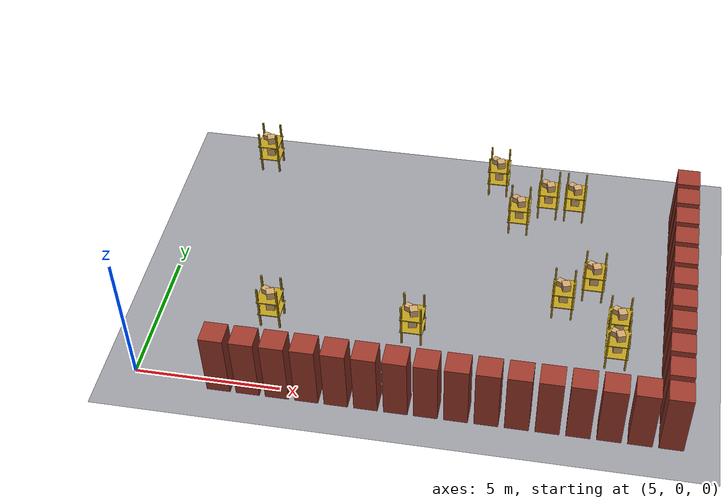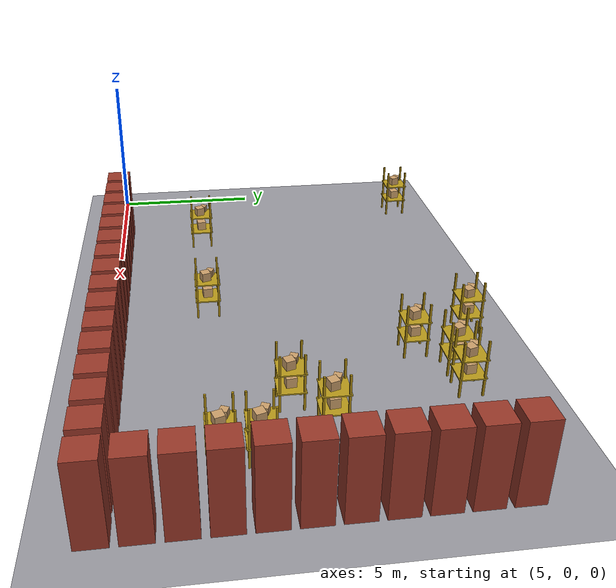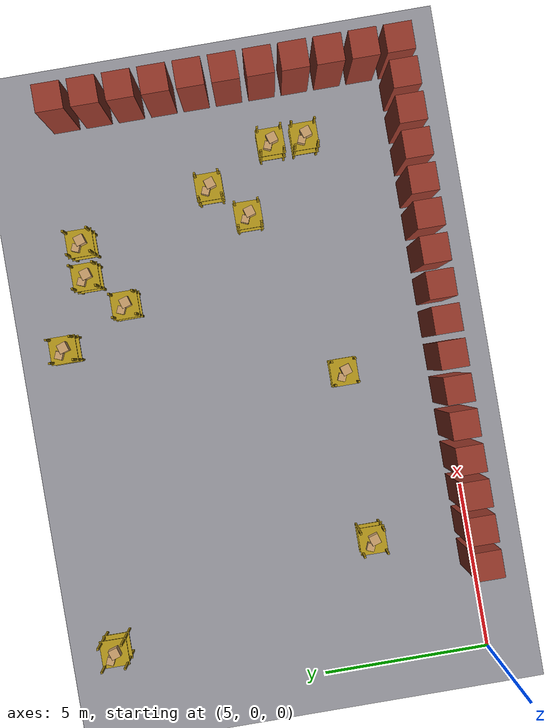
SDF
<sdf version="1.9">
 <world name="agv_nav">
  <model name="ground_plane">
   <static>true</static>
   <link name="link">
    <collision name="collision">
     <geometry><plane><normal>0 0 1</normal><size>100 100</size></plane></geometry>
    </collision>
    <visual name="visual">
     <geometry><plane><normal>0 0 1</normal><size>100 100</size></plane></geometry>
     <material>
      <ambient>0.55 0.55 0.58 1</ambient>
      <diffuse>0.6 0.6 0.63 1</diffuse>
      <specular>0.2 0.2 0.2 1</specular>
     </material>
    </visual>
   </link>
  </model>
  <model name="wall_8">
   <static>true</static>
   <pose>8 0 1.25 0 0 0</pose>
   <link name="link">
    <collision name="collision"><geometry><box><size>0.8 0.8 2.5</size></box></geometry></collision>
    <visual name="visual">
     <geometry><box><size>0.8 0.8 2.5</size></box></geometry>
     <material>
      <ambient>0.5 0.18 0.14 1</ambient>
      <diffuse>0.6 0.22 0.16 1</diffuse>
      <specular>0.1 0.1 0.1 1</specular>
     </material>
    </visual>
   </link>
  </model>
  <model name="wall_9">
   <static>true</static>
   <pose>9 0 1.25 0 0 0</pose>
   <link name="link">
    <collision name="collision"><geometry><box><size>0.8 0.8 2.5</size></box></geometry></collision>
    <visual name="visual">
     <geometry><box><size>0.8 0.8 2.5</size></box></geometry>
     <material>
      <ambient>0.5 0.18 0.14 1</ambient>
      <diffuse>0.6 0.22 0.16 1</diffuse>
      <specular>0.1 0.1 0.1 1</specular>
     </material>
    </visual>
   </link>
  </model>
  <model name="wall_10">
   <static>true</static>
   <pose>10 0 1.25 0 0 0</pose>
   <link name="link">
    <collision name="collision"><geometry><box><size>0.8 0.8 2.5</size></box></geometry></collision>
    <visual name="visual">
     <geometry><box><size>0.8 0.8 2.5</size></box></geometry>
     <material>
      <ambient>0.5 0.18 0.14 1</ambient>
      <diffuse>0.6 0.22 0.16 1</diffuse>
      <specular>0.1 0.1 0.1 1</specular>
     </material>
    </visual>
   </link>
  </model>
  <model name="wall_11">
   <static>true</static>
   <pose>11 0 1.25 0 0 0</pose>
   <link name="link">
    <collision name="collision"><geometry><box><size>0.8 0.8 2.5</size></box></geometry></collision>
    <visual name="visual">
     <geometry><box><size>0.8 0.8 2.5</size></box></geometry>
     <material>
      <ambient>0.5 0.18 0.14 1</ambient>
      <diffuse>0.6 0.22 0.16 1</diffuse>
      <specular>0.1 0.1 0.1 1</specular>
     </material>
    </visual>
   </link>
  </model>
  <model name="wall_12">
   <static>true</static>
   <pose>12 0 1.25 0 0 0</pose>
   <link name="link">
    <collision name="collision"><geometry><box><size>0.8 0.8 2.5</size></box></geometry></collision>
    <visual name="visual">
     <geometry><box><size>0.8 0.8 2.5</size></box></geometry>
     <material>
      <ambient>0.5 0.18 0.14 1</ambient>
      <diffuse>0.6 0.22 0.16 1</diffuse>
      <specular>0.1 0.1 0.1 1</specular>
     </material>
    </visual>
   </link>
  </model>
  <model name="wall_13">
   <static>true</static>
   <pose>13 0 1.25 0 0 0</pose>
   <link name="link">
    <collision name="collision"><geometry><box><size>0.8 0.8 2.5</size></box></geometry></collision>
    <visual name="visual">
     <geometry><box><size>0.8 0.8 2.5</size></box></geometry>
     <material>
      <ambient>0.5 0.18 0.14 1</ambient>
      <diffuse>0.6 0.22 0.16 1</diffuse>
      <specular>0.1 0.1 0.1 1</specular>
     </material>
    </visual>
   </link>
  </model>
  <model name="wall_14">
   <static>true</static>
   <pose>14 0 1.25 0 0 0</pose>
   <link name="link">
    <collision name="collision"><geometry><box><size>0.8 0.8 2.5</size></box></geometry></collision>
    <visual name="visual">
     <geometry><box><size>0.8 0.8 2.5</size></box></geometry>
     <material>
      <ambient>0.5 0.18 0.14 1</ambient>
      <diffuse>0.6 0.22 0.16 1</diffuse>
      <specular>0.1 0.1 0.1 1</specular>
     </material>
    </visual>
   </link>
  </model>
  <model name="wall_15">
   <static>true</static>
   <pose>15 0 1.25 0 0 0</pose>
   <link name="link">
    <collision name="collision"><geometry><box><size>0.8 0.8 2.5</size></box></geometry></collision>
    <visual name="visual">
     <geometry><box><size>0.8 0.8 2.5</size></box></geometry>
     <material>
      <ambient>0.5 0.18 0.14 1</ambient>
      <diffuse>0.6 0.22 0.16 1</diffuse>
      <specular>0.1 0.1 0.1 1</specular>
     </material>
    </visual>
   </link>
  </model>
  <model name="wall_16">
   <static>true</static>
   <pose>16 0 1.25 0 0 0</pose>
   <link name="link">
    <collision name="collision"><geometry><box><size>0.8 0.8 2.5</size></box></geometry></collision>
    <visual name="visual">
     <geometry><box><size>0.8 0.8 2.5</size></box></geometry>
     <material>
      <ambient>0.5 0.18 0.14 1</ambient>
      <diffuse>0.6 0.22 0.16 1</diffuse>
      <specular>0.1 0.1 0.1 1</specular>
     </material>
    </visual>
   </link>
  </model>
  <model name="wall_17">
   <static>true</static>
   <pose>17 0 1.25 0 0 0</pose>
   <link name="link">
    <collision name="collision"><geometry><box><size>0.8 0.8 2.5</size></box></geometry></collision>
    <visual name="visual">
     <geometry><box><size>0.8 0.8 2.5</size></box></geometry>
     <material>
      <ambient>0.5 0.18 0.14 1</ambient>
      <diffuse>0.6 0.22 0.16 1</diffuse>
      <specular>0.1 0.1 0.1 1</specular>
     </material>
    </visual>
   </link>
  </model>
  <model name="wall_18">
   <static>true</static>
   <pose>18 0 1.25 0 0 0</pose>
   <link name="link">
    <collision name="collision"><geometry><box><size>0.8 0.8 2.5</size></box></geometry></collision>
    <visual name="visual">
     <geometry><box><size>0.8 0.8 2.5</size></box></geometry>
     <material>
      <ambient>0.5 0.18 0.14 1</ambient>
      <diffuse>0.6 0.22 0.16 1</diffuse>
      <specular>0.1 0.1 0.1 1</specular>
     </material>
    </visual>
   </link>
  </model>
  <model name="wall_19">
   <static>true</static>
   <pose>19 0 1.25 0 0 0</pose>
   <link name="link">
    <collision name="collision"><geometry><box><size>0.8 0.8 2.5</size></box></geometry></collision>
    <visual name="visual">
     <geometry><box><size>0.8 0.8 2.5</size></box></geometry>
     <material>
      <ambient>0.5 0.18 0.14 1</ambient>
      <diffuse>0.6 0.22 0.16 1</diffuse>
      <specular>0.1 0.1 0.1 1</specular>
     </material>
    </visual>
   </link>
  </model>
  <model name="wall_20">
   <static>true</static>
   <pose>20 0 1.25 0 0 0</pose>
   <link name="link">
    <collision name="collision"><geometry><box><size>0.8 0.8 2.5</size></box></geometry></collision>
    <visual name="visual">
     <geometry><box><size>0.8 0.8 2.5</size></box></geometry>
     <material>
      <ambient>0.5 0.18 0.14 1</ambient>
      <diffuse>0.6 0.22 0.16 1</diffuse>
      <specular>0.1 0.1 0.1 1</specular>
     </material>
    </visual>
   </link>
  </model>
  <model name="wall_21">
   <static>true</static>
   <pose>21 0 1.25 0 0 0</pose>
   <link name="link">
    <collision name="collision"><geometry><box><size>0.8 0.8 2.5</size></box></geometry></collision>
    <visual name="visual">
     <geometry><box><size>0.8 0.8 2.5</size></box></geometry>
     <material>
      <ambient>0.5 0.18 0.14 1</ambient>
      <diffuse>0.6 0.22 0.16 1</diffuse>
      <specular>0.1 0.1 0.1 1</specular>
     </material>
    </visual>
   </link>
  </model>
  <model name="wall_22">
   <static>true</static>
   <pose>22 0 1.25 0 0 0</pose>
   <link name="link">
    <collision name="collision"><geometry><box><size>0.8 0.8 2.5</size></box></geometry></collision>
    <visual name="visual">
     <geometry><box><size>0.8 0.8 2.5</size></box></geometry>
     <material>
      <ambient>0.5 0.18 0.14 1</ambient>
      <diffuse>0.6 0.22 0.16 1</diffuse>
      <specular>0.1 0.1 0.1 1</specular>
     </material>
    </visual>
   </link>
  </model>
  <model name="wall_23">
   <static>true</static>
   <pose>23 0 1.25 0 0 0</pose>
   <link name="link">
    <collision name="collision"><geometry><box><size>0.8 0.8 2.5</size></box></geometry></collision>
    <visual name="visual">
     <geometry><box><size>0.8 0.8 2.5</size></box></geometry>
     <material>
      <ambient>0.5 0.18 0.14 1</ambient>
      <diffuse>0.6 0.22 0.16 1</diffuse>
      <specular>0.1 0.1 0.1 1</specular>
     </material>
    </visual>
   </link>
  </model>
  <model name="wall_25">
   <static>true</static>
   <pose>23 1 1.25 0 0 0</pose>
   <link name="link">
    <collision name="collision"><geometry><box><size>0.8 0.8 2.5</size></box></geometry></collision>
    <visual name="visual">
     <geometry><box><size>0.8 0.8 2.5</size></box></geometry>
     <material>
      <ambient>0.5 0.18 0.14 1</ambient>
      <diffuse>0.6 0.22 0.16 1</diffuse>
      <specular>0.1 0.1 0.1 1</specular>
     </material>
    </visual>
   </link>
  </model>
  <model name="wall_27">
   <static>true</static>
   <pose>23 2 1.25 0 0 0</pose>
   <link name="link">
    <collision name="collision"><geometry><box><size>0.8 0.8 2.5</size></box></geometry></collision>
    <visual name="visual">
     <geometry><box><size>0.8 0.8 2.5</size></box></geometry>
     <material>
      <ambient>0.5 0.18 0.14 1</ambient>
      <diffuse>0.6 0.22 0.16 1</diffuse>
      <specular>0.1 0.1 0.1 1</specular>
     </material>
    </visual>
   </link>
  </model>
  <model name="obs_1">
   <static>true</static>
   <pose>9 3 0.9 0 0 0</pose>
   <link name="link">
    <collision name="collision"><geometry><box><size>0.8 0.8 1.8</size></box></geometry></collision>
    <visual name="post_0">
     <pose>0.34 0.34 0 0 0 0</pose>
     <geometry><box><size>0.06 0.06 1.8</size></box></geometry>
     <material><ambient>0.55 0.45 0.05 1</ambient><diffuse>0.65 0.52 0.06 1</diffuse></material>
    </visual>
    <visual name="post_1">
     <pose>-0.34 0.34 0 0 0 0</pose>
     <geometry><box><size>0.06 0.06 1.8</size></box></geometry>
     <material><ambient>0.55 0.45 0.05 1</ambient><diffuse>0.65 0.52 0.06 1</diffuse></material>
    </visual>
    <visual name="post_2">
     <pose>0.34 -0.34 0 0 0 0</pose>
     <geometry><box><size>0.06 0.06 1.8</size></box></geometry>
     <material><ambient>0.55 0.45 0.05 1</ambient><diffuse>0.65 0.52 0.06 1</diffuse></material>
    </visual>
    <visual name="post_3">
     <pose>-0.34 -0.34 0 0 0 0</pose>
     <geometry><box><size>0.06 0.06 1.8</size></box></geometry>
     <material><ambient>0.55 0.45 0.05 1</ambient><diffuse>0.65 0.52 0.06 1</diffuse></material>
    </visual>
    <visual name="plank_0">
     <pose>0 0 -0.3 0 0 0</pose>
     <geometry><box><size>0.8 0.8 0.04</size></box></geometry>
     <material><ambient>0.6 0.5 0.08 1</ambient><diffuse>0.72 0.6 0.1 1</diffuse></material>
    </visual>
    <visual name="plank_1">
     <pose>0 0 0.3 0 0 0</pose>
     <geometry><box><size>0.8 0.8 0.04</size></box></geometry>
     <material><ambient>0.6 0.5 0.08 1</ambient><diffuse>0.72 0.6 0.1 1</diffuse></material>
    </visual>
    <visual name="cbox_0">
     <pose>0.05 -0.05 0.47 0 0 0.3</pose>
     <geometry><box><size>0.28 0.28 0.28</size></box></geometry>
     <material><ambient>0.72 0.56 0.38 1</ambient><diffuse>0.8 0.63 0.42 1</diffuse></material>
    </visual>
    <visual name="cbox_1">
     <pose>-0.15 0.1 0.47 0 0 -0.4</pose>
     <geometry><box><size>0.22 0.22 0.22</size></box></geometry>
     <material><ambient>0.72 0.56 0.38 1</ambient><diffuse>0.8 0.63 0.42 1</diffuse></material>
    </visual>
    <visual name="cbox_2">
     <pose>0.0 0.0 -0.13 0 0 0.1</pose>
     <geometry><box><size>0.3 0.3 0.3</size></box></geometry>
     <material><ambient>0.72 0.56 0.38 1</ambient><diffuse>0.8 0.63 0.42 1</diffuse></material>
    </visual>
   </link>
  </model>
  <model name="obs_2">
   <static>true</static>
   <pose>14 3 0.9 0 0 0</pose>
   <link name="link">
    <collision name="collision"><geometry><box><size>0.8 0.8 1.8</size></box></geometry></collision>
    <visual name="post_0">
     <pose>0.34 0.34 0 0 0 0</pose>
     <geometry><box><size>0.06 0.06 1.8</size></box></geometry>
     <material><ambient>0.55 0.45 0.05 1</ambient><diffuse>0.65 0.52 0.06 1</diffuse></material>
    </visual>
    <visual name="post_1">
     <pose>-0.34 0.34 0 0 0 0</pose>
     <geometry><box><size>0.06 0.06 1.8</size></box></geometry>
     <material><ambient>0.55 0.45 0.05 1</ambient><diffuse>0.65 0.52 0.06 1</diffuse></material>
    </visual>
    <visual name="post_2">
     <pose>0.34 -0.34 0 0 0 0</pose>
     <geometry><box><size>0.06 0.06 1.8</size></box></geometry>
     <material><ambient>0.55 0.45 0.05 1</ambient><diffuse>0.65 0.52 0.06 1</diffuse></material>
    </visual>
    <visual name="post_3">
     <pose>-0.34 -0.34 0 0 0 0</pose>
     <geometry><box><size>0.06 0.06 1.8</size></box></geometry>
     <material><ambient>0.55 0.45 0.05 1</ambient><diffuse>0.65 0.52 0.06 1</diffuse></material>
    </visual>
    <visual name="plank_0">
     <pose>0 0 -0.3 0 0 0</pose>
     <geometry><box><size>0.8 0.8 0.04</size></box></geometry>
     <material><ambient>0.6 0.5 0.08 1</ambient><diffuse>0.72 0.6 0.1 1</diffuse></material>
    </visual>
    <visual name="plank_1">
     <pose>0 0 0.3 0 0 0</pose>
     <geometry><box><size>0.8 0.8 0.04</size></box></geometry>
     <material><ambient>0.6 0.5 0.08 1</ambient><diffuse>0.72 0.6 0.1 1</diffuse></material>
    </visual>
    <visual name="cbox_0">
     <pose>0.05 -0.05 0.47 0 0 0.3</pose>
     <geometry><box><size>0.28 0.28 0.28</size></box></geometry>
     <material><ambient>0.72 0.56 0.38 1</ambient><diffuse>0.8 0.63 0.42 1</diffuse></material>
    </visual>
    <visual name="cbox_1">
     <pose>-0.15 0.1 0.47 0 0 -0.4</pose>
     <geometry><box><size>0.22 0.22 0.22</size></box></geometry>
     <material><ambient>0.72 0.56 0.38 1</ambient><diffuse>0.8 0.63 0.42 1</diffuse></material>
    </visual>
    <visual name="cbox_2">
     <pose>0.0 0.0 -0.13 0 0 0.1</pose>
     <geometry><box><size>0.3 0.3 0.3</size></box></geometry>
     <material><ambient>0.72 0.56 0.38 1</ambient><diffuse>0.8 0.63 0.42 1</diffuse></material>
    </visual>
   </link>
  </model>
  <model name="obs_3">
   <static>true</static>
   <pose>21 3 0.9 0 0 0</pose>
   <link name="link">
    <collision name="collision"><geometry><box><size>0.8 0.8 1.8</size></box></geometry></collision>
    <visual name="post_0">
     <pose>0.34 0.34 0 0 0 0</pose>
     <geometry><box><size>0.06 0.06 1.8</size></box></geometry>
     <material><ambient>0.55 0.45 0.05 1</ambient><diffuse>0.65 0.52 0.06 1</diffuse></material>
    </visual>
    <visual name="post_1">
     <pose>-0.34 0.34 0 0 0 0</pose>
     <geometry><box><size>0.06 0.06 1.8</size></box></geometry>
     <material><ambient>0.55 0.45 0.05 1</ambient><diffuse>0.65 0.52 0.06 1</diffuse></material>
    </visual>
    <visual name="post_2">
     <pose>0.34 -0.34 0 0 0 0</pose>
     <geometry><box><size>0.06 0.06 1.8</size></box></geometry>
     <material><ambient>0.55 0.45 0.05 1</ambient><diffuse>0.65 0.52 0.06 1</diffuse></material>
    </visual>
    <visual name="post_3">
     <pose>-0.34 -0.34 0 0 0 0</pose>
     <geometry><box><size>0.06 0.06 1.8</size></box></geometry>
     <material><ambient>0.55 0.45 0.05 1</ambient><diffuse>0.65 0.52 0.06 1</diffuse></material>
    </visual>
    <visual name="plank_0">
     <pose>0 0 -0.3 0 0 0</pose>
     <geometry><box><size>0.8 0.8 0.04</size></box></geometry>
     <material><ambient>0.6 0.5 0.08 1</ambient><diffuse>0.72 0.6 0.1 1</diffuse></material>
    </visual>
    <visual name="plank_1">
     <pose>0 0 0.3 0 0 0</pose>
     <geometry><box><size>0.8 0.8 0.04</size></box></geometry>
     <material><ambient>0.6 0.5 0.08 1</ambient><diffuse>0.72 0.6 0.1 1</diffuse></material>
    </visual>
    <visual name="cbox_0">
     <pose>0.05 -0.05 0.47 0 0 0.3</pose>
     <geometry><box><size>0.28 0.28 0.28</size></box></geometry>
     <material><ambient>0.72 0.56 0.38 1</ambient><diffuse>0.8 0.63 0.42 1</diffuse></material>
    </visual>
    <visual name="cbox_1">
     <pose>-0.15 0.1 0.47 0 0 -0.4</pose>
     <geometry><box><size>0.22 0.22 0.22</size></box></geometry>
     <material><ambient>0.72 0.56 0.38 1</ambient><diffuse>0.8 0.63 0.42 1</diffuse></material>
    </visual>
    <visual name="cbox_2">
     <pose>0.0 0.0 -0.13 0 0 0.1</pose>
     <geometry><box><size>0.3 0.3 0.3</size></box></geometry>
     <material><ambient>0.72 0.56 0.38 1</ambient><diffuse>0.8 0.63 0.42 1</diffuse></material>
    </visual>
   </link>
  </model>
  <model name="wall_29">
   <static>true</static>
   <pose>23 3 1.25 0 0 0</pose>
   <link name="link">
    <collision name="collision"><geometry><box><size>0.8 0.8 2.5</size></box></geometry></collision>
    <visual name="visual">
     <geometry><box><size>0.8 0.8 2.5</size></box></geometry>
     <material>
      <ambient>0.5 0.18 0.14 1</ambient>
      <diffuse>0.6 0.22 0.16 1</diffuse>
      <specular>0.1 0.1 0.1 1</specular>
     </material>
    </visual>
   </link>
  </model>
  <model name="obs_5">
   <static>true</static>
   <pose>21 4 0.9 0 0 0</pose>
   <link name="link">
    <collision name="collision"><geometry><box><size>0.8 0.8 1.8</size></box></geometry></collision>
    <visual name="post_0">
     <pose>0.34 0.34 0 0 0 0</pose>
     <geometry><box><size>0.06 0.06 1.8</size></box></geometry>
     <material><ambient>0.55 0.45 0.05 1</ambient><diffuse>0.65 0.52 0.06 1</diffuse></material>
    </visual>
    <visual name="post_1">
     <pose>-0.34 0.34 0 0 0 0</pose>
     <geometry><box><size>0.06 0.06 1.8</size></box></geometry>
     <material><ambient>0.55 0.45 0.05 1</ambient><diffuse>0.65 0.52 0.06 1</diffuse></material>
    </visual>
    <visual name="post_2">
     <pose>0.34 -0.34 0 0 0 0</pose>
     <geometry><box><size>0.06 0.06 1.8</size></box></geometry>
     <material><ambient>0.55 0.45 0.05 1</ambient><diffuse>0.65 0.52 0.06 1</diffuse></material>
    </visual>
    <visual name="post_3">
     <pose>-0.34 -0.34 0 0 0 0</pose>
     <geometry><box><size>0.06 0.06 1.8</size></box></geometry>
     <material><ambient>0.55 0.45 0.05 1</ambient><diffuse>0.65 0.52 0.06 1</diffuse></material>
    </visual>
    <visual name="plank_0">
     <pose>0 0 -0.3 0 0 0</pose>
     <geometry><box><size>0.8 0.8 0.04</size></box></geometry>
     <material><ambient>0.6 0.5 0.08 1</ambient><diffuse>0.72 0.6 0.1 1</diffuse></material>
    </visual>
    <visual name="plank_1">
     <pose>0 0 0.3 0 0 0</pose>
     <geometry><box><size>0.8 0.8 0.04</size></box></geometry>
     <material><ambient>0.6 0.5 0.08 1</ambient><diffuse>0.72 0.6 0.1 1</diffuse></material>
    </visual>
    <visual name="cbox_0">
     <pose>0.05 -0.05 0.47 0 0 0.3</pose>
     <geometry><box><size>0.28 0.28 0.28</size></box></geometry>
     <material><ambient>0.72 0.56 0.38 1</ambient><diffuse>0.8 0.63 0.42 1</diffuse></material>
    </visual>
    <visual name="cbox_1">
     <pose>-0.15 0.1 0.47 0 0 -0.4</pose>
     <geometry><box><size>0.22 0.22 0.22</size></box></geometry>
     <material><ambient>0.72 0.56 0.38 1</ambient><diffuse>0.8 0.63 0.42 1</diffuse></material>
    </visual>
    <visual name="cbox_2">
     <pose>0.0 0.0 -0.13 0 0 0.1</pose>
     <geometry><box><size>0.3 0.3 0.3</size></box></geometry>
     <material><ambient>0.72 0.56 0.38 1</ambient><diffuse>0.8 0.63 0.42 1</diffuse></material>
    </visual>
   </link>
  </model>
  <model name="wall_31">
   <static>true</static>
   <pose>23 4 1.25 0 0 0</pose>
   <link name="link">
    <collision name="collision"><geometry><box><size>0.8 0.8 2.5</size></box></geometry></collision>
    <visual name="visual">
     <geometry><box><size>0.8 0.8 2.5</size></box></geometry>
     <material>
      <ambient>0.5 0.18 0.14 1</ambient>
      <diffuse>0.6 0.22 0.16 1</diffuse>
      <specular>0.1 0.1 0.1 1</specular>
     </material>
    </visual>
   </link>
  </model>
  <model name="obs_7">
   <static>true</static>
   <pose>19 5 0.9 0 0 0</pose>
   <link name="link">
    <collision name="collision"><geometry><box><size>0.8 0.8 1.8</size></box></geometry></collision>
    <visual name="post_0">
     <pose>0.34 0.34 0 0 0 0</pose>
     <geometry><box><size>0.06 0.06 1.8</size></box></geometry>
     <material><ambient>0.55 0.45 0.05 1</ambient><diffuse>0.65 0.52 0.06 1</diffuse></material>
    </visual>
    <visual name="post_1">
     <pose>-0.34 0.34 0 0 0 0</pose>
     <geometry><box><size>0.06 0.06 1.8</size></box></geometry>
     <material><ambient>0.55 0.45 0.05 1</ambient><diffuse>0.65 0.52 0.06 1</diffuse></material>
    </visual>
    <visual name="post_2">
     <pose>0.34 -0.34 0 0 0 0</pose>
     <geometry><box><size>0.06 0.06 1.8</size></box></geometry>
     <material><ambient>0.55 0.45 0.05 1</ambient><diffuse>0.65 0.52 0.06 1</diffuse></material>
    </visual>
    <visual name="post_3">
     <pose>-0.34 -0.34 0 0 0 0</pose>
     <geometry><box><size>0.06 0.06 1.8</size></box></geometry>
     <material><ambient>0.55 0.45 0.05 1</ambient><diffuse>0.65 0.52 0.06 1</diffuse></material>
    </visual>
    <visual name="plank_0">
     <pose>0 0 -0.3 0 0 0</pose>
     <geometry><box><size>0.8 0.8 0.04</size></box></geometry>
     <material><ambient>0.6 0.5 0.08 1</ambient><diffuse>0.72 0.6 0.1 1</diffuse></material>
    </visual>
    <visual name="plank_1">
     <pose>0 0 0.3 0 0 0</pose>
     <geometry><box><size>0.8 0.8 0.04</size></box></geometry>
     <material><ambient>0.6 0.5 0.08 1</ambient><diffuse>0.72 0.6 0.1 1</diffuse></material>
    </visual>
    <visual name="cbox_0">
     <pose>0.05 -0.05 0.47 0 0 0.3</pose>
     <geometry><box><size>0.28 0.28 0.28</size></box></geometry>
     <material><ambient>0.72 0.56 0.38 1</ambient><diffuse>0.8 0.63 0.42 1</diffuse></material>
    </visual>
    <visual name="cbox_1">
     <pose>-0.15 0.1 0.47 0 0 -0.4</pose>
     <geometry><box><size>0.22 0.22 0.22</size></box></geometry>
     <material><ambient>0.72 0.56 0.38 1</ambient><diffuse>0.8 0.63 0.42 1</diffuse></material>
    </visual>
    <visual name="cbox_2">
     <pose>0.0 0.0 -0.13 0 0 0.1</pose>
     <geometry><box><size>0.3 0.3 0.3</size></box></geometry>
     <material><ambient>0.72 0.56 0.38 1</ambient><diffuse>0.8 0.63 0.42 1</diffuse></material>
    </visual>
   </link>
  </model>
  <model name="wall_33">
   <static>true</static>
   <pose>23 5 1.25 0 0 0</pose>
   <link name="link">
    <collision name="collision"><geometry><box><size>0.8 0.8 2.5</size></box></geometry></collision>
    <visual name="visual">
     <geometry><box><size>0.8 0.8 2.5</size></box></geometry>
     <material>
      <ambient>0.5 0.18 0.14 1</ambient>
      <diffuse>0.6 0.22 0.16 1</diffuse>
      <specular>0.1 0.1 0.1 1</specular>
     </material>
    </visual>
   </link>
  </model>
  <model name="obs_9">
   <static>true</static>
   <pose>20 6 0.9 0 0 0</pose>
   <link name="link">
    <collision name="collision"><geometry><box><size>0.8 0.8 1.8</size></box></geometry></collision>
    <visual name="post_0">
     <pose>0.34 0.34 0 0 0 0</pose>
     <geometry><box><size>0.06 0.06 1.8</size></box></geometry>
     <material><ambient>0.55 0.45 0.05 1</ambient><diffuse>0.65 0.52 0.06 1</diffuse></material>
    </visual>
    <visual name="post_1">
     <pose>-0.34 0.34 0 0 0 0</pose>
     <geometry><box><size>0.06 0.06 1.8</size></box></geometry>
     <material><ambient>0.55 0.45 0.05 1</ambient><diffuse>0.65 0.52 0.06 1</diffuse></material>
    </visual>
    <visual name="post_2">
     <pose>0.34 -0.34 0 0 0 0</pose>
     <geometry><box><size>0.06 0.06 1.8</size></box></geometry>
     <material><ambient>0.55 0.45 0.05 1</ambient><diffuse>0.65 0.52 0.06 1</diffuse></material>
    </visual>
    <visual name="post_3">
     <pose>-0.34 -0.34 0 0 0 0</pose>
     <geometry><box><size>0.06 0.06 1.8</size></box></geometry>
     <material><ambient>0.55 0.45 0.05 1</ambient><diffuse>0.65 0.52 0.06 1</diffuse></material>
    </visual>
    <visual name="plank_0">
     <pose>0 0 -0.3 0 0 0</pose>
     <geometry><box><size>0.8 0.8 0.04</size></box></geometry>
     <material><ambient>0.6 0.5 0.08 1</ambient><diffuse>0.72 0.6 0.1 1</diffuse></material>
    </visual>
    <visual name="plank_1">
     <pose>0 0 0.3 0 0 0</pose>
     <geometry><box><size>0.8 0.8 0.04</size></box></geometry>
     <material><ambient>0.6 0.5 0.08 1</ambient><diffuse>0.72 0.6 0.1 1</diffuse></material>
    </visual>
    <visual name="cbox_0">
     <pose>0.05 -0.05 0.47 0 0 0.3</pose>
     <geometry><box><size>0.28 0.28 0.28</size></box></geometry>
     <material><ambient>0.72 0.56 0.38 1</ambient><diffuse>0.8 0.63 0.42 1</diffuse></material>
    </visual>
    <visual name="cbox_1">
     <pose>-0.15 0.1 0.47 0 0 -0.4</pose>
     <geometry><box><size>0.22 0.22 0.22</size></box></geometry>
     <material><ambient>0.72 0.56 0.38 1</ambient><diffuse>0.8 0.63 0.42 1</diffuse></material>
    </visual>
    <visual name="cbox_2">
     <pose>0.0 0.0 -0.13 0 0 0.1</pose>
     <geometry><box><size>0.3 0.3 0.3</size></box></geometry>
     <material><ambient>0.72 0.56 0.38 1</ambient><diffuse>0.8 0.63 0.42 1</diffuse></material>
    </visual>
   </link>
  </model>
  <model name="wall_35">
   <static>true</static>
   <pose>23 6 1.25 0 0 0</pose>
   <link name="link">
    <collision name="collision"><geometry><box><size>0.8 0.8 2.5</size></box></geometry></collision>
    <visual name="visual">
     <geometry><box><size>0.8 0.8 2.5</size></box></geometry>
     <material>
      <ambient>0.5 0.18 0.14 1</ambient>
      <diffuse>0.6 0.22 0.16 1</diffuse>
      <specular>0.1 0.1 0.1 1</specular>
     </material>
    </visual>
   </link>
  </model>
  <model name="wall_37">
   <static>true</static>
   <pose>23 7 1.25 0 0 0</pose>
   <link name="link">
    <collision name="collision"><geometry><box><size>0.8 0.8 2.5</size></box></geometry></collision>
    <visual name="visual">
     <geometry><box><size>0.8 0.8 2.5</size></box></geometry>
     <material>
      <ambient>0.5 0.18 0.14 1</ambient>
      <diffuse>0.6 0.22 0.16 1</diffuse>
      <specular>0.1 0.1 0.1 1</specular>
     </material>
    </visual>
   </link>
  </model>
  <model name="wall_39">
   <static>true</static>
   <pose>23 8 1.25 0 0 0</pose>
   <link name="link">
    <collision name="collision"><geometry><box><size>0.8 0.8 2.5</size></box></geometry></collision>
    <visual name="visual">
     <geometry><box><size>0.8 0.8 2.5</size></box></geometry>
     <material>
      <ambient>0.5 0.18 0.14 1</ambient>
      <diffuse>0.6 0.22 0.16 1</diffuse>
      <specular>0.1 0.1 0.1 1</specular>
     </material>
    </visual>
   </link>
  </model>
  <model name="obs_11">
   <static>true</static>
   <pose>17 9 0.9 0 0 0</pose>
   <link name="link">
    <collision name="collision"><geometry><box><size>0.8 0.8 1.8</size></box></geometry></collision>
    <visual name="post_0">
     <pose>0.34 0.34 0 0 0 0</pose>
     <geometry><box><size>0.06 0.06 1.8</size></box></geometry>
     <material><ambient>0.55 0.45 0.05 1</ambient><diffuse>0.65 0.52 0.06 1</diffuse></material>
    </visual>
    <visual name="post_1">
     <pose>-0.34 0.34 0 0 0 0</pose>
     <geometry><box><size>0.06 0.06 1.8</size></box></geometry>
     <material><ambient>0.55 0.45 0.05 1</ambient><diffuse>0.65 0.52 0.06 1</diffuse></material>
    </visual>
    <visual name="post_2">
     <pose>0.34 -0.34 0 0 0 0</pose>
     <geometry><box><size>0.06 0.06 1.8</size></box></geometry>
     <material><ambient>0.55 0.45 0.05 1</ambient><diffuse>0.65 0.52 0.06 1</diffuse></material>
    </visual>
    <visual name="post_3">
     <pose>-0.34 -0.34 0 0 0 0</pose>
     <geometry><box><size>0.06 0.06 1.8</size></box></geometry>
     <material><ambient>0.55 0.45 0.05 1</ambient><diffuse>0.65 0.52 0.06 1</diffuse></material>
    </visual>
    <visual name="plank_0">
     <pose>0 0 -0.3 0 0 0</pose>
     <geometry><box><size>0.8 0.8 0.04</size></box></geometry>
     <material><ambient>0.6 0.5 0.08 1</ambient><diffuse>0.72 0.6 0.1 1</diffuse></material>
    </visual>
    <visual name="plank_1">
     <pose>0 0 0.3 0 0 0</pose>
     <geometry><box><size>0.8 0.8 0.04</size></box></geometry>
     <material><ambient>0.6 0.5 0.08 1</ambient><diffuse>0.72 0.6 0.1 1</diffuse></material>
    </visual>
    <visual name="cbox_0">
     <pose>0.05 -0.05 0.47 0 0 0.3</pose>
     <geometry><box><size>0.28 0.28 0.28</size></box></geometry>
     <material><ambient>0.72 0.56 0.38 1</ambient><diffuse>0.8 0.63 0.42 1</diffuse></material>
    </visual>
    <visual name="cbox_1">
     <pose>-0.15 0.1 0.47 0 0 -0.4</pose>
     <geometry><box><size>0.22 0.22 0.22</size></box></geometry>
     <material><ambient>0.72 0.56 0.38 1</ambient><diffuse>0.8 0.63 0.42 1</diffuse></material>
    </visual>
    <visual name="cbox_2">
     <pose>0.0 0.0 -0.13 0 0 0.1</pose>
     <geometry><box><size>0.3 0.3 0.3</size></box></geometry>
     <material><ambient>0.72 0.56 0.38 1</ambient><diffuse>0.8 0.63 0.42 1</diffuse></material>
    </visual>
   </link>
  </model>
  <model name="wall_41">
   <static>true</static>
   <pose>23 9 1.25 0 0 0</pose>
   <link name="link">
    <collision name="collision"><geometry><box><size>0.8 0.8 2.5</size></box></geometry></collision>
    <visual name="visual">
     <geometry><box><size>0.8 0.8 2.5</size></box></geometry>
     <material>
      <ambient>0.5 0.18 0.14 1</ambient>
      <diffuse>0.6 0.22 0.16 1</diffuse>
      <specular>0.1 0.1 0.1 1</specular>
     </material>
    </visual>
   </link>
  </model>
  <model name="obs_14">
   <static>true</static>
   <pose>18 10 0.9 0 0 0</pose>
   <link name="link">
    <collision name="collision"><geometry><box><size>0.8 0.8 1.8</size></box></geometry></collision>
    <visual name="post_0">
     <pose>0.34 0.34 0 0 0 0</pose>
     <geometry><box><size>0.06 0.06 1.8</size></box></geometry>
     <material><ambient>0.55 0.45 0.05 1</ambient><diffuse>0.65 0.52 0.06 1</diffuse></material>
    </visual>
    <visual name="post_1">
     <pose>-0.34 0.34 0 0 0 0</pose>
     <geometry><box><size>0.06 0.06 1.8</size></box></geometry>
     <material><ambient>0.55 0.45 0.05 1</ambient><diffuse>0.65 0.52 0.06 1</diffuse></material>
    </visual>
    <visual name="post_2">
     <pose>0.34 -0.34 0 0 0 0</pose>
     <geometry><box><size>0.06 0.06 1.8</size></box></geometry>
     <material><ambient>0.55 0.45 0.05 1</ambient><diffuse>0.65 0.52 0.06 1</diffuse></material>
    </visual>
    <visual name="post_3">
     <pose>-0.34 -0.34 0 0 0 0</pose>
     <geometry><box><size>0.06 0.06 1.8</size></box></geometry>
     <material><ambient>0.55 0.45 0.05 1</ambient><diffuse>0.65 0.52 0.06 1</diffuse></material>
    </visual>
    <visual name="plank_0">
     <pose>0 0 -0.3 0 0 0</pose>
     <geometry><box><size>0.8 0.8 0.04</size></box></geometry>
     <material><ambient>0.6 0.5 0.08 1</ambient><diffuse>0.72 0.6 0.1 1</diffuse></material>
    </visual>
    <visual name="plank_1">
     <pose>0 0 0.3 0 0 0</pose>
     <geometry><box><size>0.8 0.8 0.04</size></box></geometry>
     <material><ambient>0.6 0.5 0.08 1</ambient><diffuse>0.72 0.6 0.1 1</diffuse></material>
    </visual>
    <visual name="cbox_0">
     <pose>0.05 -0.05 0.47 0 0 0.3</pose>
     <geometry><box><size>0.28 0.28 0.28</size></box></geometry>
     <material><ambient>0.72 0.56 0.38 1</ambient><diffuse>0.8 0.63 0.42 1</diffuse></material>
    </visual>
    <visual name="cbox_1">
     <pose>-0.15 0.1 0.47 0 0 -0.4</pose>
     <geometry><box><size>0.22 0.22 0.22</size></box></geometry>
     <material><ambient>0.72 0.56 0.38 1</ambient><diffuse>0.8 0.63 0.42 1</diffuse></material>
    </visual>
    <visual name="cbox_2">
     <pose>0.0 0.0 -0.13 0 0 0.1</pose>
     <geometry><box><size>0.3 0.3 0.3</size></box></geometry>
     <material><ambient>0.72 0.56 0.38 1</ambient><diffuse>0.8 0.63 0.42 1</diffuse></material>
    </visual>
   </link>
  </model>
  <model name="obs_15">
   <static>true</static>
   <pose>19 10 0.9 0 0 0</pose>
   <link name="link">
    <collision name="collision"><geometry><box><size>0.8 0.8 1.8</size></box></geometry></collision>
    <visual name="post_0">
     <pose>0.34 0.34 0 0 0 0</pose>
     <geometry><box><size>0.06 0.06 1.8</size></box></geometry>
     <material><ambient>0.55 0.45 0.05 1</ambient><diffuse>0.65 0.52 0.06 1</diffuse></material>
    </visual>
    <visual name="post_1">
     <pose>-0.34 0.34 0 0 0 0</pose>
     <geometry><box><size>0.06 0.06 1.8</size></box></geometry>
     <material><ambient>0.55 0.45 0.05 1</ambient><diffuse>0.65 0.52 0.06 1</diffuse></material>
    </visual>
    <visual name="post_2">
     <pose>0.34 -0.34 0 0 0 0</pose>
     <geometry><box><size>0.06 0.06 1.8</size></box></geometry>
     <material><ambient>0.55 0.45 0.05 1</ambient><diffuse>0.65 0.52 0.06 1</diffuse></material>
    </visual>
    <visual name="post_3">
     <pose>-0.34 -0.34 0 0 0 0</pose>
     <geometry><box><size>0.06 0.06 1.8</size></box></geometry>
     <material><ambient>0.55 0.45 0.05 1</ambient><diffuse>0.65 0.52 0.06 1</diffuse></material>
    </visual>
    <visual name="plank_0">
     <pose>0 0 -0.3 0 0 0</pose>
     <geometry><box><size>0.8 0.8 0.04</size></box></geometry>
     <material><ambient>0.6 0.5 0.08 1</ambient><diffuse>0.72 0.6 0.1 1</diffuse></material>
    </visual>
    <visual name="plank_1">
     <pose>0 0 0.3 0 0 0</pose>
     <geometry><box><size>0.8 0.8 0.04</size></box></geometry>
     <material><ambient>0.6 0.5 0.08 1</ambient><diffuse>0.72 0.6 0.1 1</diffuse></material>
    </visual>
    <visual name="cbox_0">
     <pose>0.05 -0.05 0.47 0 0 0.3</pose>
     <geometry><box><size>0.28 0.28 0.28</size></box></geometry>
     <material><ambient>0.72 0.56 0.38 1</ambient><diffuse>0.8 0.63 0.42 1</diffuse></material>
    </visual>
    <visual name="cbox_1">
     <pose>-0.15 0.1 0.47 0 0 -0.4</pose>
     <geometry><box><size>0.22 0.22 0.22</size></box></geometry>
     <material><ambient>0.72 0.56 0.38 1</ambient><diffuse>0.8 0.63 0.42 1</diffuse></material>
    </visual>
    <visual name="cbox_2">
     <pose>0.0 0.0 -0.13 0 0 0.1</pose>
     <geometry><box><size>0.3 0.3 0.3</size></box></geometry>
     <material><ambient>0.72 0.56 0.38 1</ambient><diffuse>0.8 0.63 0.42 1</diffuse></material>
    </visual>
   </link>
  </model>
  <model name="wall_43">
   <static>true</static>
   <pose>23 10 1.25 0 0 0</pose>
   <link name="link">
    <collision name="collision"><geometry><box><size>0.8 0.8 2.5</size></box></geometry></collision>
    <visual name="visual">
     <geometry><box><size>0.8 0.8 2.5</size></box></geometry>
     <material>
      <ambient>0.5 0.18 0.14 1</ambient>
      <diffuse>0.6 0.22 0.16 1</diffuse>
      <specular>0.1 0.1 0.1 1</specular>
     </material>
    </visual>
   </link>
  </model>
  <model name="obs_16">
   <static>true</static>
   <pose>7 11 0.9 0 0 0</pose>
   <link name="link">
    <collision name="collision"><geometry><box><size>0.8 0.8 1.8</size></box></geometry></collision>
    <visual name="post_0">
     <pose>0.34 0.34 0 0 0 0</pose>
     <geometry><box><size>0.06 0.06 1.8</size></box></geometry>
     <material><ambient>0.55 0.45 0.05 1</ambient><diffuse>0.65 0.52 0.06 1</diffuse></material>
    </visual>
    <visual name="post_1">
     <pose>-0.34 0.34 0 0 0 0</pose>
     <geometry><box><size>0.06 0.06 1.8</size></box></geometry>
     <material><ambient>0.55 0.45 0.05 1</ambient><diffuse>0.65 0.52 0.06 1</diffuse></material>
    </visual>
    <visual name="post_2">
     <pose>0.34 -0.34 0 0 0 0</pose>
     <geometry><box><size>0.06 0.06 1.8</size></box></geometry>
     <material><ambient>0.55 0.45 0.05 1</ambient><diffuse>0.65 0.52 0.06 1</diffuse></material>
    </visual>
    <visual name="post_3">
     <pose>-0.34 -0.34 0 0 0 0</pose>
     <geometry><box><size>0.06 0.06 1.8</size></box></geometry>
     <material><ambient>0.55 0.45 0.05 1</ambient><diffuse>0.65 0.52 0.06 1</diffuse></material>
    </visual>
    <visual name="plank_0">
     <pose>0 0 -0.3 0 0 0</pose>
     <geometry><box><size>0.8 0.8 0.04</size></box></geometry>
     <material><ambient>0.6 0.5 0.08 1</ambient><diffuse>0.72 0.6 0.1 1</diffuse></material>
    </visual>
    <visual name="plank_1">
     <pose>0 0 0.3 0 0 0</pose>
     <geometry><box><size>0.8 0.8 0.04</size></box></geometry>
     <material><ambient>0.6 0.5 0.08 1</ambient><diffuse>0.72 0.6 0.1 1</diffuse></material>
    </visual>
    <visual name="cbox_0">
     <pose>0.05 -0.05 0.47 0 0 0.3</pose>
     <geometry><box><size>0.28 0.28 0.28</size></box></geometry>
     <material><ambient>0.72 0.56 0.38 1</ambient><diffuse>0.8 0.63 0.42 1</diffuse></material>
    </visual>
    <visual name="cbox_1">
     <pose>-0.15 0.1 0.47 0 0 -0.4</pose>
     <geometry><box><size>0.22 0.22 0.22</size></box></geometry>
     <material><ambient>0.72 0.56 0.38 1</ambient><diffuse>0.8 0.63 0.42 1</diffuse></material>
    </visual>
    <visual name="cbox_2">
     <pose>0.0 0.0 -0.13 0 0 0.1</pose>
     <geometry><box><size>0.3 0.3 0.3</size></box></geometry>
     <material><ambient>0.72 0.56 0.38 1</ambient><diffuse>0.8 0.63 0.42 1</diffuse></material>
    </visual>
   </link>
  </model>
  <model name="obs_17">
   <static>true</static>
   <pose>16 11 0.9 0 0 0</pose>
   <link name="link">
    <collision name="collision"><geometry><box><size>0.8 0.8 1.8</size></box></geometry></collision>
    <visual name="post_0">
     <pose>0.34 0.34 0 0 0 0</pose>
     <geometry><box><size>0.06 0.06 1.8</size></box></geometry>
     <material><ambient>0.55 0.45 0.05 1</ambient><diffuse>0.65 0.52 0.06 1</diffuse></material>
    </visual>
    <visual name="post_1">
     <pose>-0.34 0.34 0 0 0 0</pose>
     <geometry><box><size>0.06 0.06 1.8</size></box></geometry>
     <material><ambient>0.55 0.45 0.05 1</ambient><diffuse>0.65 0.52 0.06 1</diffuse></material>
    </visual>
    <visual name="post_2">
     <pose>0.34 -0.34 0 0 0 0</pose>
     <geometry><box><size>0.06 0.06 1.8</size></box></geometry>
     <material><ambient>0.55 0.45 0.05 1</ambient><diffuse>0.65 0.52 0.06 1</diffuse></material>
    </visual>
    <visual name="post_3">
     <pose>-0.34 -0.34 0 0 0 0</pose>
     <geometry><box><size>0.06 0.06 1.8</size></box></geometry>
     <material><ambient>0.55 0.45 0.05 1</ambient><diffuse>0.65 0.52 0.06 1</diffuse></material>
    </visual>
    <visual name="plank_0">
     <pose>0 0 -0.3 0 0 0</pose>
     <geometry><box><size>0.8 0.8 0.04</size></box></geometry>
     <material><ambient>0.6 0.5 0.08 1</ambient><diffuse>0.72 0.6 0.1 1</diffuse></material>
    </visual>
    <visual name="plank_1">
     <pose>0 0 0.3 0 0 0</pose>
     <geometry><box><size>0.8 0.8 0.04</size></box></geometry>
     <material><ambient>0.6 0.5 0.08 1</ambient><diffuse>0.72 0.6 0.1 1</diffuse></material>
    </visual>
    <visual name="cbox_0">
     <pose>0.05 -0.05 0.47 0 0 0.3</pose>
     <geometry><box><size>0.28 0.28 0.28</size></box></geometry>
     <material><ambient>0.72 0.56 0.38 1</ambient><diffuse>0.8 0.63 0.42 1</diffuse></material>
    </visual>
    <visual name="cbox_1">
     <pose>-0.15 0.1 0.47 0 0 -0.4</pose>
     <geometry><box><size>0.22 0.22 0.22</size></box></geometry>
     <material><ambient>0.72 0.56 0.38 1</ambient><diffuse>0.8 0.63 0.42 1</diffuse></material>
    </visual>
    <visual name="cbox_2">
     <pose>0.0 0.0 -0.13 0 0 0.1</pose>
     <geometry><box><size>0.3 0.3 0.3</size></box></geometry>
     <material><ambient>0.72 0.56 0.38 1</ambient><diffuse>0.8 0.63 0.42 1</diffuse></material>
    </visual>
   </link>
  </model>
 </world>
</sdf>
